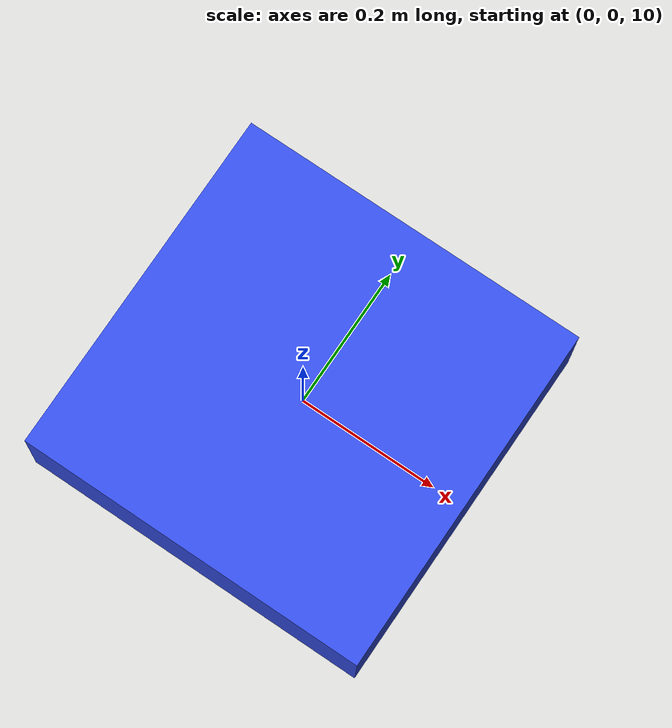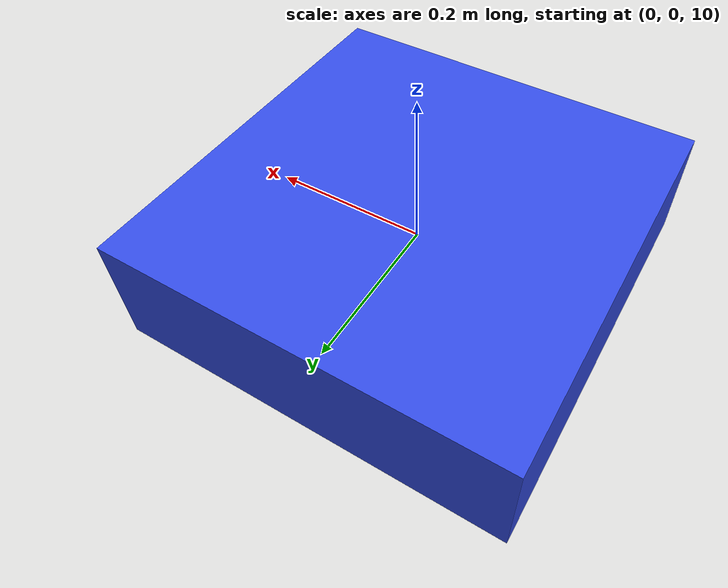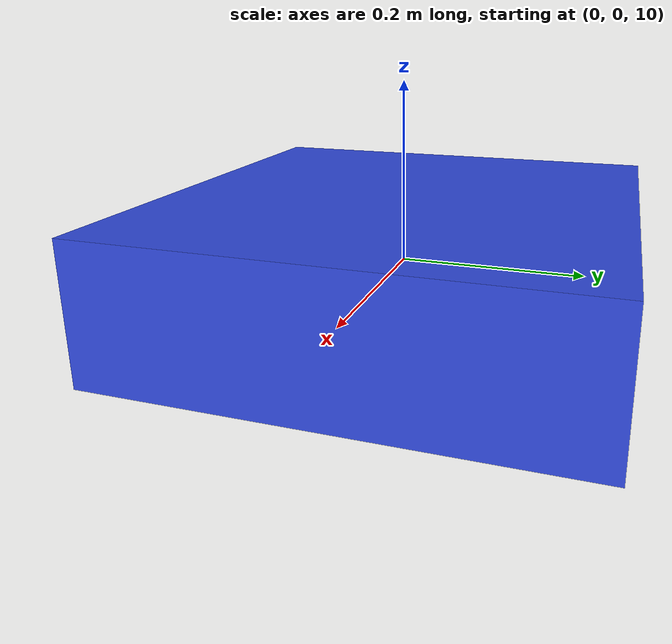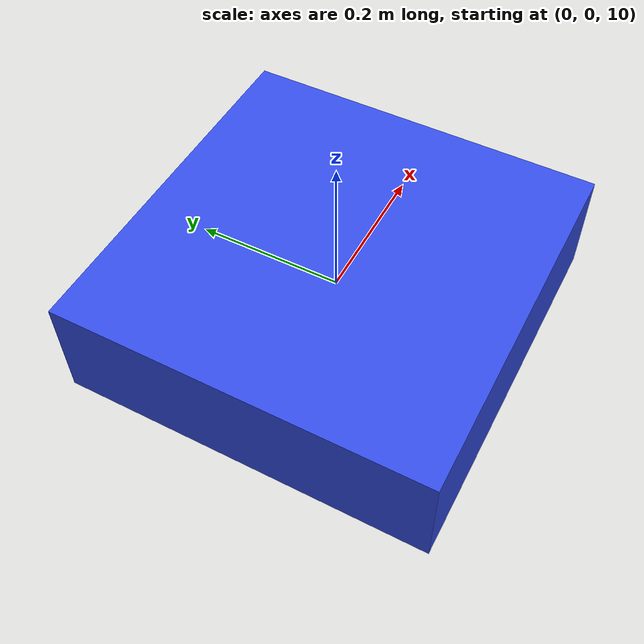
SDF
<?xml version="1.0" ?>
<sdf version="1.6">
  <world name="ajabgarh_terrain">
    <physics name="1ms" type="ignored">
      <max_step_size>0.001</max_step_size>
      <real_time_factor>1.0</real_time_factor>
    </physics>

    <!-- Directional Sun Light -->
    <light type="directional" name="sun">
      <cast_shadows>true</cast_shadows>
      <pose>0 0 200 0 0 0</pose>
      <diffuse>1.0 1.0 1.0 1</diffuse>
      <specular>0.3 0.3 0.3 1</specular>
      <direction>-0.5 0.1 -0.9</direction>
    </light>

    <!-- Textured Satellite Ground Plane -->
    <model name="satellite_ground_plane">
      <static>true</static>
      <link name="link">
        <collision name="collision">
          <geometry>
            <plane>
              <normal>0 0 1</normal>
              <size>1000 1000</size>
            </plane>
          </geometry>
        </collision>
        <visual name="visual">
          <geometry>
            <plane>
              <normal>0 0 1</normal>
              <size>1000 1000</size>
            </plane>
          </geometry>
          <material>
            <ambient>1 1 1 1</ambient>
            <diffuse>1 1 1 1</diffuse>
            <pbr>
              <metal>
                <albedo_map>/home/password/gazeebo_drone/data/ajabgarh_sat.png</albedo_map>
              </metal>
            </pbr>
          </material>
        </visual>
      </link>
    </model>

    <!-- Quadcopter Drone Model with Downward Camera -->
    <model name="x500_quadcopter">
      <pose>0 0 10 0 0 0</pose>
      <link name="base_link">
        <inertial>
          <mass>1.5</mass>
          <inertia>
            <ixx>0.03</ixx><ixy>0</ixy><ixz>0</ixz>
            <iyy>0.03</iyy><iyz>0</iyz>
            <izz>0.06</izz>
          </inertia>
        </inertial>
        <visual name="body_visual">
          <geometry>
            <box>
              <size>0.5 0.5 0.15</size>
            </box>
          </geometry>
          <material>
            <ambient>0.1 0.1 0.8 1</ambient>
            <diffuse>0.2 0.3 0.9 1</diffuse>
          </material>
        </visual>
        <sensor name="downward_camera" type="camera">
          <pose>0 0 -0.1 0 1.5707963 0</pose>
          <camera>
            <horizontal_fov>1.047</horizontal_fov>
            <image>
              <width>640</width>
              <height>480</height>
            </image>
            <clip>
              <near>0.1</near>
              <far>1000</far>
            </clip>
          </camera>
          <always_on>1</always_on>
          <update_rate>30</update_rate>
          <visualize>true</visualize>
        </sensor>
      </link>
    </model>

  </world>
</sdf>
